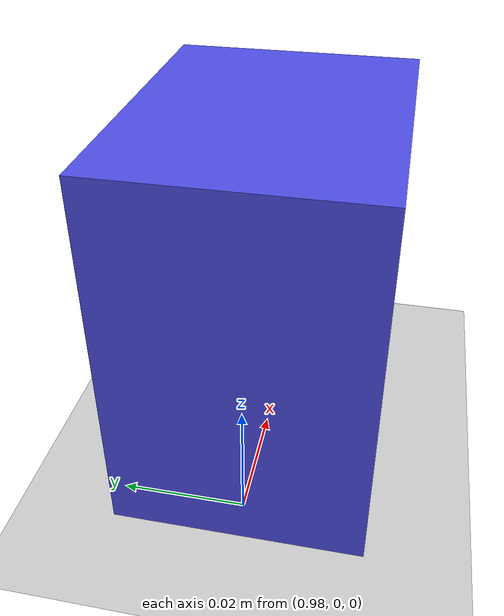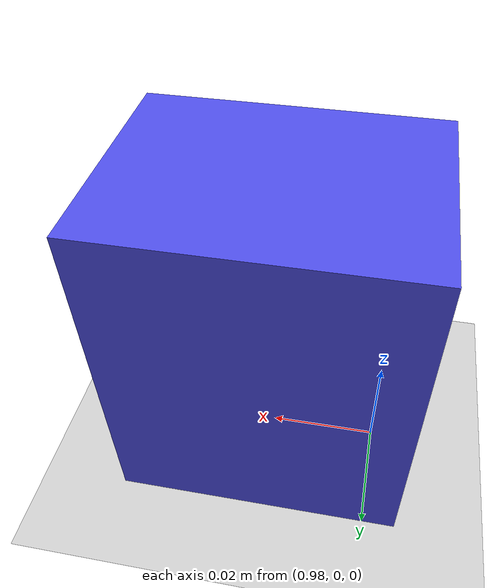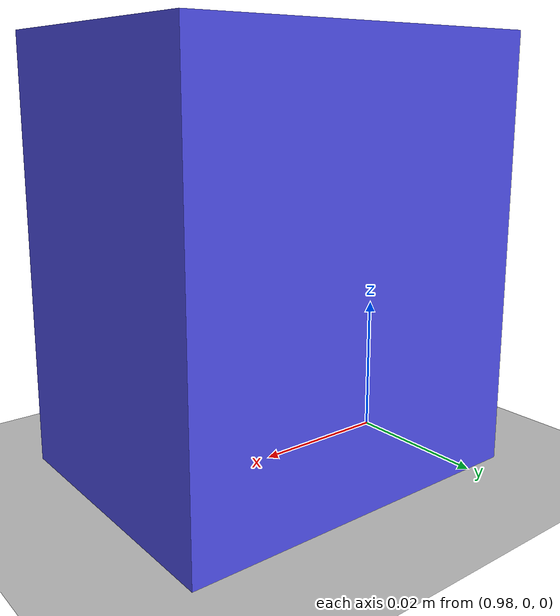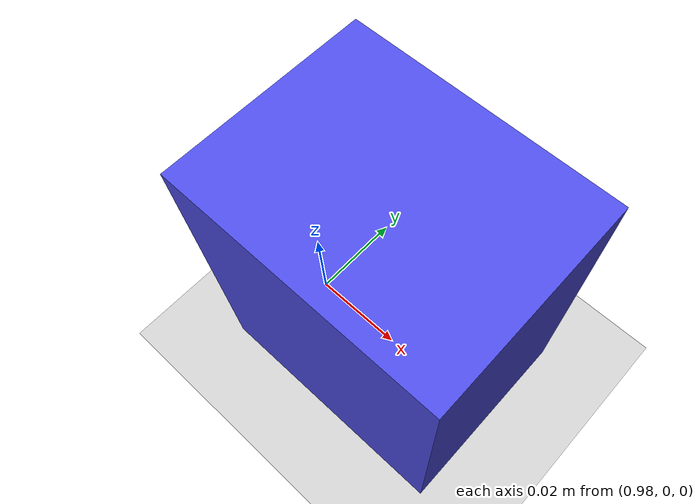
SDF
<?xml version="1.0" ?>
<sdf version="1.8">
  <world name="default">

    <physics name="1ms" type="ignored">
      <max_step_size>0.001</max_step_size>
      <real_time_factor>1.0</real_time_factor>
    </physics>

    <plugin
      filename="gz-sim-physics-system"
      name="gz::sim::systems::Physics">
    </plugin>

    <plugin
      filename="gz-sim-user-commands-system"
      name="gz::sim::systems::UserCommands">
    </plugin>

    <plugin
      filename="gz-sim-scene-broadcaster-system"
      name="gz::sim::systems::SceneBroadcaster">
    </plugin>

    <light type="directional" name="sun">
      <cast_shadows>true</cast_shadows>
      <pose>0 0 10 0 0 0</pose>
      <diffuse>0.8 0.8 0.8 1</diffuse>
      <specular>0.2 0.2 0.2 1</specular>
      <attenuation>
        <range>1000</range>
        <constant>0.9</constant>
        <linear>0.01</linear>
        <quadratic>0.001</quadratic>
      </attenuation>
      <direction>-0.5 0.1 -0.9</direction>
    </light>

    <model name="ground_plane">
      <static>true</static>
      <link name="link">
        <collision name="collision">
          <geometry>
            <plane>
              <normal>0 0 1</normal>
            </plane>
          </geometry>
        </collision>
        <visual name="visual">
          <geometry>
            <plane>
              <normal>0 0 1</normal>
              <size>100 100</size>
            </plane>
          </geometry>
          <material>
            <ambient>0.8 0.8 0.8 1</ambient>
            <diffuse>0.8 0.8 0.8 1</diffuse>
            <specular>0.8 0.8 0.8 1</specular>
          </material>
        </visual>
      </link>
    </model>

    <!--       MOVABLE CUBE MODEL       -->
    <model name="movable_cube">
      <pose>1 0 0.03 0 0 0</pose>
      <static>false</static>

      <link name="cube_link">
        <pose>0 0 0 0 0 0</pose>

        <inertial>
          <mass>0.00002</mass>
          <inertia>
            <ixx>0.00001</ixx>
            <iyy>0.00001</iyy>
            <izz>0.00001</izz>
          </inertia>
        </inertial>

        <!-- Visual -->
        <visual name="cube_visual">
          <geometry>
            <box>
              <size>0.052 0.04 0.06</size>
            </box>
          </geometry>
          <material>
            <ambient>0.2 0.2 0.8 1</ambient>
            <diffuse>0.3 0.3 0.9 1</diffuse>
          </material>
        </visual>

        <!-- Collision -->
        <collision name="cube_collision">
          <geometry>
            <box>
              <size>0.052 0.04 0.06</size>
            </box>
          </geometry>
          <surface>
            <friction>
              <ode>
                <mu>1000000</mu>
                <mu2>1000000</mu2>
              </ode>
            </friction>
            <contact>
              <ode>
                <kp>100000</kp>
                <kd>1</kd>
              </ode>
            </contact>
          </surface>
        </collision>

      </link>
    </model>

  </world>
</sdf>
